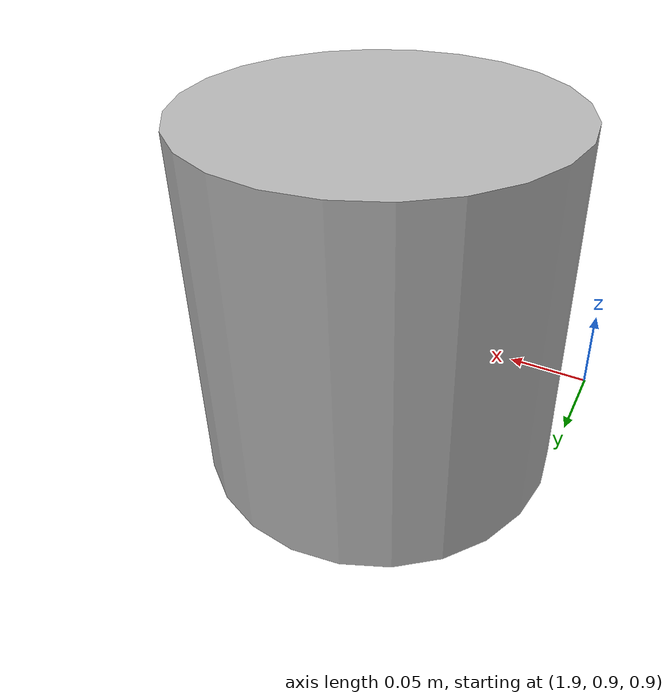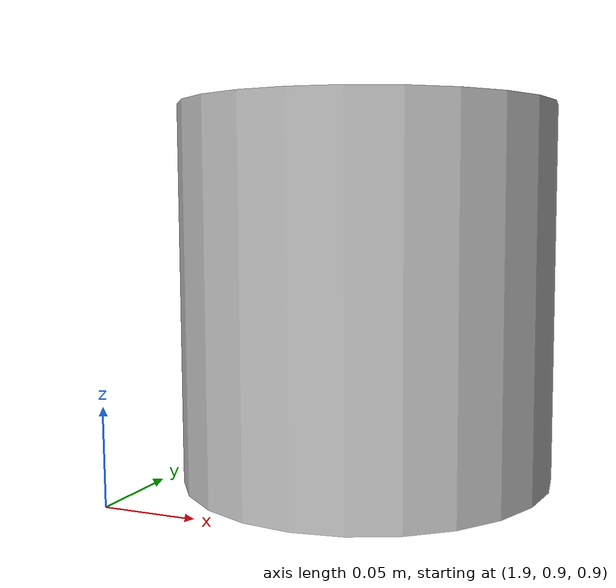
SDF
<?xml version="1.0"?>
<sdf version="1.8">
    <model name='objects'>
    <static>true</static>
        <link name='obj1'>
            <pose>2 1 1 0 0 0</pose>

            <visual name='visual'>
                <geometry>
                      <cylinder>
                        <radius>0.1</radius>
                        <length>0.2</length>
                    </cylinder>
                </geometry>
            </visual>
            </link>

    </model>
</sdf>
